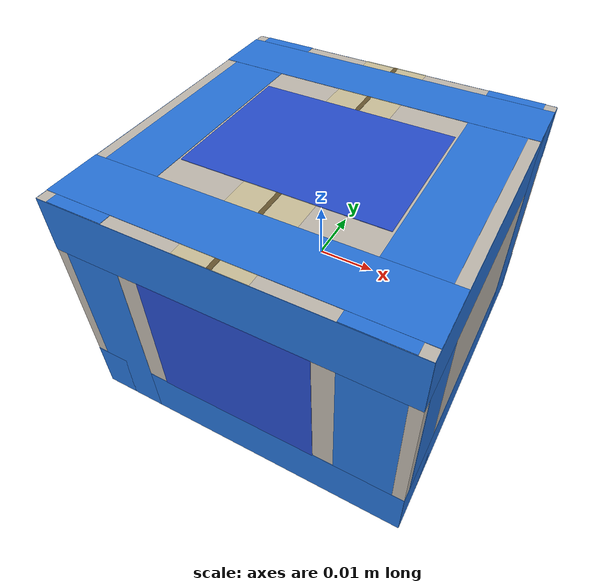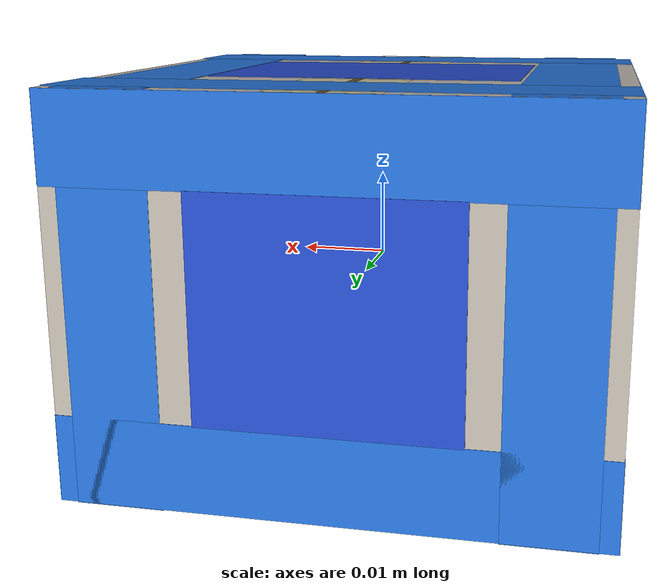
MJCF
<mujoco model="parcel_blue">
  <compiler angle="radian" autolimits="true" texturedir="assets"/>

  <asset>
    <texture name="carton_tex"     type="2d" file="carton_texture.png"/>
    <texture name="side_label_tex" type="cube" file="side_label_blue.png"/>
    <texture name="top_label_tex"  type="2d" file="label_blue.png"/>

    <material name="carton_mat" texture="carton_tex" texrepeat="1 1" specular="0.05" shininess="0.02" reflectance="0.0"/>
    <material name="side_label_mat" texture="side_label_tex" texrepeat="1 1" texuniform="false" specular="0.1" shininess="0.05" reflectance="0.0"/>
    <material name="top_label_mat" texture="top_label_tex" texrepeat="1 1" texuniform="false" specular="0.1" shininess="0.05" reflectance="0.0"/>
    <material name="seam_mat" rgba="0.15 0.08 0.04 1" specular="0.0" shininess="0.0" reflectance="0.0"/>
    <material name="tape_mat" rgba="0.92 0.85 0.50 0.35" specular="0.95" shininess="0.7" reflectance="0.4"/>
    <material name="color_tape_mat" rgba="0.15 0.45 0.85 1.0" specular="0.95" shininess="0.7" reflectance="0.4"/>
  </asset>

  <worldbody>
    <body name="parcel_blue">
      <freejoint name="parcel_joint"/>
      <inertial mass="0.3" pos="0 0 0" diaginertia="6.0e-4 6.0e-4 9.0e-4"/>

      <!-- Cardboard body -->
      <geom name="carton_body" type="box"
            size="0.030 0.030 0.0225"
            material="carton_mat"
            condim="6"
            friction="0.8 0.005 0.0001"
            solimp="0.99 0.99 0.001" solref="0.01 1"/>

      <!-- Side labels -->
      <geom name="side_label_pos_y" type="box"
            size="0.0144 0.00005 0.0126"
            pos="0 0.03005 0"
            euler="0 0 3.1416"
            material="side_label_mat"
            contype="0" conaffinity="0"/>
      <geom name="side_label_neg_y" type="box"
            size="0.0144 0.00005 0.0126"
            pos="0 -0.03005 0"
            material="side_label_mat"
            contype="0" conaffinity="0"/>

      <!-- Seam line across top -->
      <geom name="seam" type="box"
            size="0.030 0.0004 0.00004"
            pos="0 0 0.02255"
            euler="0 0 1.5708"
            material="seam_mat"
            contype="0" conaffinity="0"/>

      <!-- Tape: top strip -->
      <geom name="tape_top" type="box"
            size="0.030 0.006 0.00004"
            pos="0 0 0.02256"
            euler="0 0 1.5708"
            material="tape_mat"
            contype="0" conaffinity="0"/>

      <!-- Tape: wraps down +Y side face, 2cm down from top -->
      <geom name="tape_side_pos_y" type="box"
            size="0.010 0.00004 0.006"
            pos="0 0.03001 0.01255"
            euler="0 1.5708 0"
            material="tape_mat"
            contype="0" conaffinity="0"/>

      <!-- Tape: wraps down -Y side face, 2cm down from top -->
      <geom name="tape_side_neg_y" type="box"
            size="0.010 0.00004 0.006"
            pos="0 -0.03001 0.01255"
            euler="0 1.5708 0"
            material="tape_mat"
            contype="0" conaffinity="0"/>

      <!-- Top label — on top of tape -->
      <geom name="top_label" type="box" size="0.0176 0.0128 0.00005" pos="0 0 0.02258" material="top_label_mat" contype="0" conaffinity="0"/>

      <!-- size="0.030 0.030 0.0225" -->
      <geom name="color_tape_top_right" type="box" size="0.030 0.005 0.00004" pos="0.023 0 0.02256" euler="0 0 1.5708" material="color_tape_mat" contype="0" conaffinity="0"/>
      <geom name="color_tape_top_left" type="box" size="0.030 0.005 0.00004" pos="-0.023 0 0.02256" euler="0 0 1.5708" material="color_tape_mat" contype="0" conaffinity="0"/>
      <geom name="color_tape_top_lower" type="box" size="0.030 0.005 0.00004" pos="0 -0.023 0.02257" material="color_tape_mat" contype="0" conaffinity="0"/>
      <geom name="color_tape_top_top" type="box" size="0.030 0.005 0.00004" pos="0 0.023 0.02257" material="color_tape_mat" contype="0" conaffinity="0"/>

      <!-- size="0.030 0.030 0.0225" -->
      <geom name="color_tape_bottom_right" type="box" size="0.030 0.005 0.00004" pos="0.023 0 -0.02256" euler="0 0 1.5708" material="color_tape_mat" contype="0" conaffinity="0"/>
      <geom name="color_tape_bottom_left" type="box" size="0.030 0.005 0.00004" pos="-0.023 0 -0.02256" euler="0 0 1.5708" material="color_tape_mat" contype="0" conaffinity="0"/>
      <geom name="color_tape_bottom_lower" type="box" size="0.030 0.005 0.00004" pos="0 -0.023 -0.02257" material="color_tape_mat" contype="0" conaffinity="0"/>
      <geom name="color_tape_bottom_top" type="box" size="0.030 0.005 0.00004" pos="0 0.023 -0.02257" material="color_tape_mat" contype="0" conaffinity="0"/>

      <!-- +Y side face stripes -->
      <geom name="color_tape_pos_y_top" type="box" size="0.030 0.00004 0.005" pos="0 0.03002 0.0175" material="color_tape_mat" contype="0" conaffinity="0"/>
      <geom name="color_tape_pos_y_bottom" type="box" size="0.030 0.00004 0.005" pos="0 0.03001 -0.0175" material="color_tape_mat" contype="0" conaffinity="0"/>
      <geom name="color_tape_pos_y_right" type="box" size="0.0225 0.00004 0.005" pos="0.023 0.03001 0" euler="0 1.5708 0" material="color_tape_mat" contype="0" conaffinity="0"/>
      <geom name="color_tape_pos_y_left" type="box" size="0.0225 0.00004 0.005" pos="-0.023 0.03001 0" euler="0 1.5708 0" material="color_tape_mat" contype="0" conaffinity="0"/>

      <!-- -Y side face stripes -->
      <geom name="color_tape_neg_y_top" type="box" size="0.030 0.00004 0.005" pos="0 -0.03002 0.0175" material="color_tape_mat" contype="0" conaffinity="0"/>
      <geom name="color_tape_neg_y_bottom" type="box" size="0.030 0.00004 0.005" pos="0 -0.03001 -0.0175" material="color_tape_mat" contype="0" conaffinity="0"/>
      <geom name="color_tape_neg_y_right" type="box" size="0.0225 0.00004 0.005" pos="0.023 -0.03001 0" euler="0 1.5708 0" material="color_tape_mat" contype="0" conaffinity="0"/>
      <geom name="color_tape_neg_y_left" type="box" size="0.0225 0.00004 0.005" pos="-0.023 -0.03001 0" euler="0 1.5708 0" material="color_tape_mat" contype="0" conaffinity="0"/>

      <!-- +X side face stripes -->
      <geom name="color_tape_pos_x_top" type="box" size="0.030 0.00004 0.005" pos="0.03001 0 0.0175" euler="0 0 1.5708" material="color_tape_mat" contype="0" conaffinity="0"/>
      <geom name="color_tape_pos_x_bottom" type="box" size="0.030 0.00004 0.005" pos="0.03001 0 -0.0175" euler="0 0 1.5708" material="color_tape_mat" contype="0" conaffinity="0"/>
      <geom name="color_tape_pos_x_right" type="box" size="0.0225 0.00004 0.005" pos="0.03001 0.023 0" euler="1.5708 0 1.5708" material="color_tape_mat" contype="0" conaffinity="0"/>
      <geom name="color_tape_pos_x_left" type="box" size="0.0225 0.00004 0.005" pos="0.03001 -0.023 0" euler="1.5708 0 1.5708" material="color_tape_mat" contype="0" conaffinity="0"/>

      <!-- -X side face stripes -->
      <geom name="color_tape_neg_x_top" type="box" size="0.030 0.00004 0.005" pos="-0.03001 0 0.0175" euler="0 0 1.5708" material="color_tape_mat" contype="0" conaffinity="0"/>
      <geom name="color_tape_neg_x_bottom" type="box" size="0.030 0.00004 0.005" pos="-0.03001 0 -0.0175" euler="0 0 1.5708" material="color_tape_mat" contype="0" conaffinity="0"/>
      <geom name="color_tape_neg_x_right" type="box" size="0.0225 0.00004 0.005" pos="-0.03001 0.023 0" euler="1.5708 0 1.5708" material="color_tape_mat" contype="0" conaffinity="0"/>
      <geom name="color_tape_neg_x_left" type="box" size="0.0225 0.00004 0.005" pos="-0.03001 -0.023 0" euler="1.5708 0 1.5708" material="color_tape_mat" contype="0" conaffinity="0"/>

    </body>
  </worldbody>
</mujoco>
